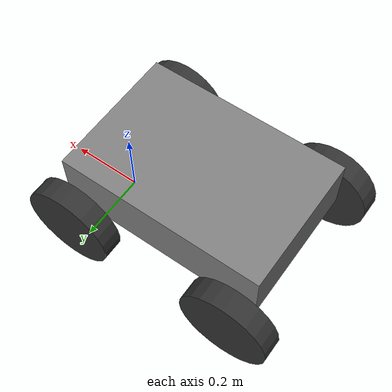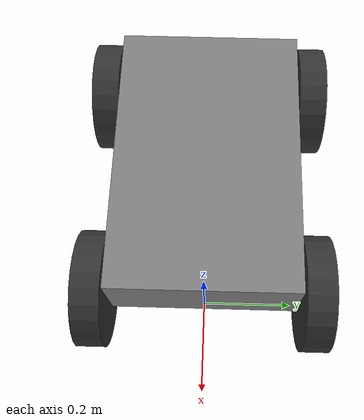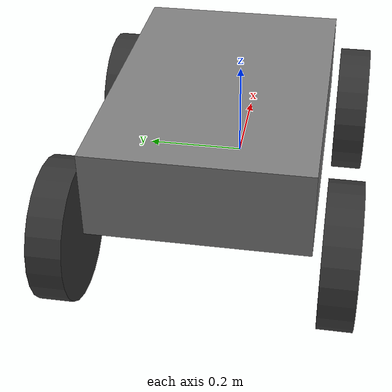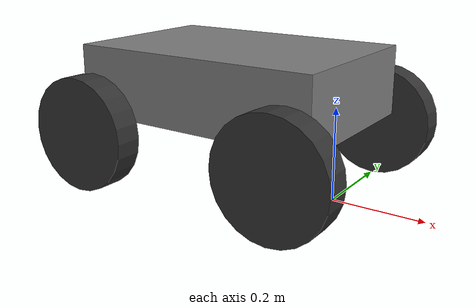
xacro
<?xml version="1.0"?>
<robot
  xmlns:controller="http://playerstage.sourceforge.net/gazebo/xmlschema/#controller"
  xmlns:interface="http://playerstage.sourceforge.net/gazebo/xmlschema/#interface"
  xmlns:xacro="http://ros.org/wiki/xacro"
  name="volksbot_base">

  <xacro:property name="M_PI" value="3.1415926535897931" />

  <xacro:property name="wheel_width" value="0.06" />
  <!-- This is the wheel radius for the robot height, the one for the odometry is in volksbot_node.cpp  -->
  <xacro:property name="wheel_radius" value="0.125" />
  <xacro:property name="axis_length" value="0.47" />
  <xacro:property name="wheel_x_offset" value="0.24" />
  <xacro:property name="wheel_z_offset" value="-0.0275" />
  <xacro:property name="turning_adaptation" value="0.95" />
  <xacro:property name="base_mass" value="1" />
  <xacro:property name="wheel_mass" value="0.1" />
  <xacro:property name="back_wheel_mass" value="0.1" />

  <xacro:property name="base_link_length" value="0.57"/>
  <xacro:property name="base_link_width" value="0.38"/>
  <xacro:property name="base_link_height" value="0.155"/>
  <!-- base_footprint is a fictitious link(frame) that is on the ground right below base_link origin,
       navigation stack depends on this frame -->

  <link name="base_footprint" />
  <joint name="base_link_footprint_joint" type="fixed">
	<origin xyz="0 0 ${base_link_height/2 - wheel_z_offset + wheel_radius}" rpy="0 0 0"/>
	<parent link="base_footprint" />
	<child link="base_link" />
  </joint>

  <link name="base_link_dummy">
    <visual>
      <origin xyz="0 0 0" rpy="0 0 0" />
      <geometry>
        <box size="${base_link_length} ${base_link_width} ${base_link_height}" />
        <!--mesh filename="package://volksbot_driver/meshes/base.stl"/-->
      </geometry>
      <material name="grey" >
        <color rgba="0.5 0.5 0.5 1" />
      </material>
    </visual>
    <collision>
      <origin xyz="0 0 0" rpy="0 0 0" />
      <geometry>
        <box size="${base_link_length} ${base_link_width} ${base_link_height}" />
        <!--mesh filename="package://volksbot_driver/meshes/base.stl"/-->
      </geometry>
    </collision>
    <inertial>
      <mass value="${base_mass}" />
      <origin pose="0 0 0 0 0 0" />
      <inertia iyy="${0.0833333 * base_mass * (base_link_length**2 + base_link_height**2)}" ixy="0.0" ixz="0.0"
        ixx="${0.0833333 * base_mass * (base_link_width**2 + base_link_height**2)}" iyz="0.0"
        izz="${0.0833333 * base_mass * (base_link_length**2 + base_link_width**2)}" />
    </inertial>
  </link>

  <joint name="base_link_dummy_joint" type="fixed">
    <origin xyz="${-wheel_x_offset} 0 0" rpy="0 0 0" />
    <parent link="base_link"/>
    <child link="base_link_dummy" />
  </joint>

  <link name="base_link"/>

  <xacro:macro name="volksbot_wheel" params="name xyz rotate_visual friction type mass ix iy iz">
    <!-- rotate_visual: 0 for right side, 1 for left side -->
    <link name="${name}_wheel_link">
      <visual>
        <origin xyz="0 0 0" rpy="${M_PI/2} 0 ${rotate_visual * M_PI}" />
        <geometry>
          <cylinder length="${wheel_width}" radius="${wheel_radius}"/>
          <!--mesh filename="package://volksbot_driver/meshes/wheel.stl" /-->
        </geometry>
        <material name="blackish">
          <color rgba="0.2 0.2 0.2 1"/>
        </material>
      </visual>
      <collision>
        <origin xyz="0 0 0" rpy="${M_PI/2} 0 0" />
        <geometry>
         <!-- using STL for collision to fix http://answers.ros.org/question/2368/gazebo-model-wheels-slip-after-upgrade-to-electric -->
          <cylinder length="${wheel_width}" radius="${wheel_radius}"/>>
          <!--mesh filename="package://volksbot_driver/meshes/wheel.stl" /-->
        </geometry>
      </collision>
      <inertial>
        <mass value="${mass}" />
        <origin xyz="${ix} ${iy} ${iz}" />
        <inertia ixx="${0.0833333 * mass * (3 * wheel_radius**2 + wheel_width**2)}" ixy="0.0" ixz="0.0"
          iyy="${0.5 * mass * wheel_radius**2}" iyz="0.0"
          izz="${0.083333 * mass *(3 * wheel_radius**2 + wheel_width**2)}" />
      </inertial>
    </link>

    <!-- friction parameters -->
    <gazebo reference="${name}_wheel_link">
      <mu1 value="${friction}"/>
      <mu2 value="${friction}"/>
      <kp  value="1000000.0" />
      <kd  value="1.0" />
      <maxVel  value="1.0" />
      <minDepth  value="0.0" />
      <material value="Gazebo/FlatBlack" />
    </gazebo>

    <joint name="${name}_wheel_joint" type="${type}">
      <origin xyz="${xyz}" rpy="0 0 0" />
      <parent link="base_link"/>
      <child link="${name}_wheel_link"/>
      <axis xyz="0 1 0"/>

      <calibration rising="0.0"/>
      <dynamics damping="1.0" friction="0.0"/>
      <limit effort="100" velocity="15.0" />
      <safety_controller k_velocity="15" />
    </joint>
  </xacro:macro>

  <xacro:volksbot_wheel name="left_front" xyz="0 ${axis_length/2} ${-base_link_height/2 + wheel_z_offset}" rotate_visual="1" friction="100.0" type="continuous" mass="${wheel_mass}" ix="0" iy="0" iz="0" />
  <xacro:volksbot_wheel name="left_rear" xyz="${-2 * wheel_x_offset} ${axis_length/2} ${-base_link_height/2 + wheel_z_offset}" rotate_visual="1" friction="0.0" type="fixed" mass="${back_wheel_mass}" ix="${0.5*base_link_length}" iy="${-axis_length/2}" iz="${base_link_height/2 - wheel_z_offset}"/>

  <xacro:volksbot_wheel name="right_front" xyz="0 ${-axis_length/2} ${-base_link_height/2 + wheel_z_offset}" rotate_visual="0" friction="100.0" type="continuous" mass="${wheel_mass}" ix="0" iy="0" iz="0" />
  <xacro:volksbot_wheel name="right_rear" xyz="${-2 *wheel_x_offset} ${-axis_length/2} ${-base_link_height/2 + wheel_z_offset}" rotate_visual="0" friction="0.0" type="fixed" mass="${back_wheel_mass}" ix="${0.5 * base_link_length}" iy="${axis_length/2}" iz="${base_link_height/2 - wheel_z_offset}"/>

  <link name="base_top" />

  <joint name="base_top_joint" type="fixed">
    <origin xyz="0 0 ${base_link_height / 2.0}" rpy="0 0 0" />
    <parent link="base_link_dummy" />
    <child link="base_top"/>
  </joint>

  <gazebo>
    <plugin name="diffdrive" filename="libgazebo_ros_diff_drive.so">
      <legacyMode>false</legacyMode>
      <alwaysOn>true</alwaysOn>
      <updateRate>100</updateRate>
      <leftJoint>left_front_wheel_joint</leftJoint>
      <rightJoint>right_front_wheel_joint</rightJoint>
      <wheelSeparation>${axis_length}</wheelSeparation>
      <wheelDiameter>${2*wheel_radius}</wheelDiameter>
      <torque>4.0</torque>
      <commandTopic>cmd_vel</commandTopic>
      <odometryTopic>odom</odometryTopic>
      <odometryFrame>odom</odometryFrame>
      <robotBaseFrame>base_footprint</robotBaseFrame>
      <publishWheelTF>true</publishWheelTF>
      <publishOdomTF>true</publishOdomTF>
      <publishTf>true</publishTf>
      <publishWheelJointState>false</publishWheelJointState>
    </plugin>
  </gazebo>

</robot>
